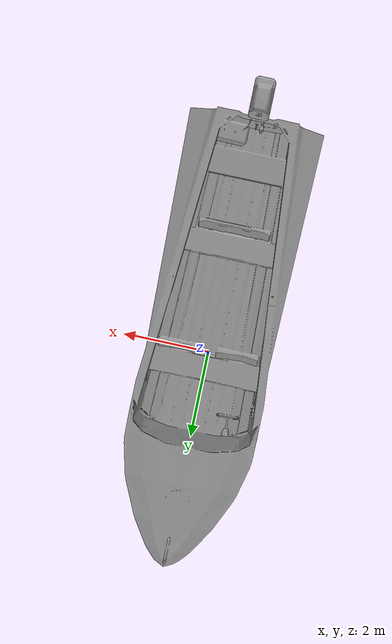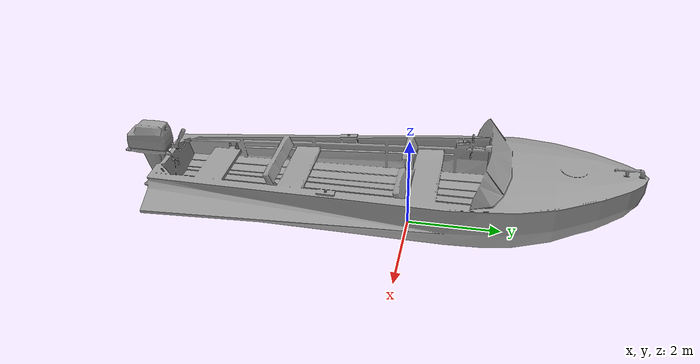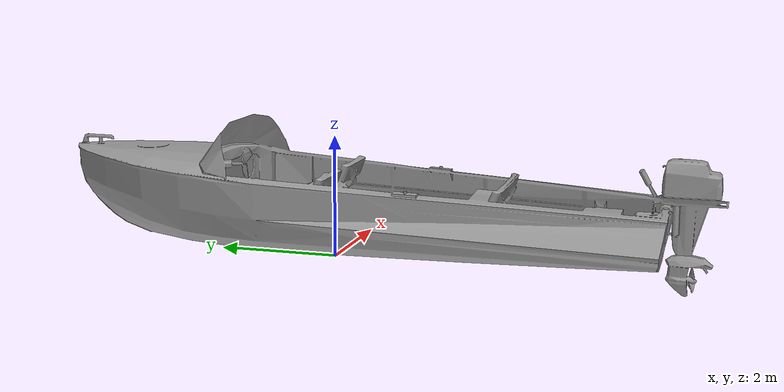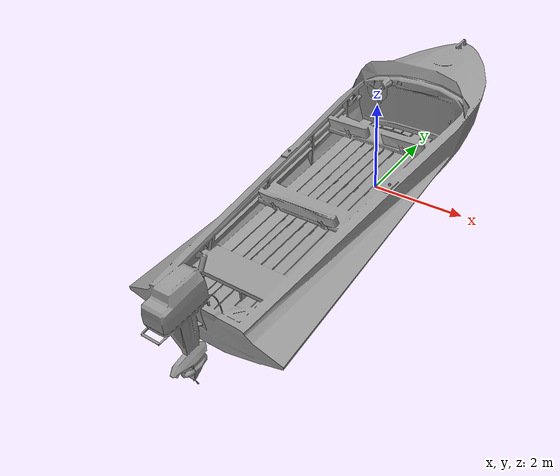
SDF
<?xml version='1.0'?>
<sdf version='1.7'>
  <model name='speedboat'>
    <static>true</static>
    <link name='link'>
      <visual name='visual'>
        <pose>0 0 0.2 0 0 1.57</pose>
        <geometry>
          <mesh>
            <uri>/marinero_simulations/models/speedboat/meshes/Speedboat.stl</uri>
            <scale>2.0 2.0 2.0</scale>
          </mesh>
        </geometry>
        <material>
          <script>
            <uri>file://media/materials/scripts/gazebo.material</uri>
            <name>Gazebo/Grey</name>
          </script>
        </material>
      </visual>
      <collision name='collision'>
        <pose>0 0 0.2 0 0 1.57</pose>
        <geometry>
          <mesh>
            <uri>/marinero_simulations/models/sailboat_1/meshes/Speedboat.stl</uri>
            <scale>2.0 2.0 2.0</scale>
          </mesh>
        </geometry>
      </collision>
    </link>
  </model>
</sdf>
